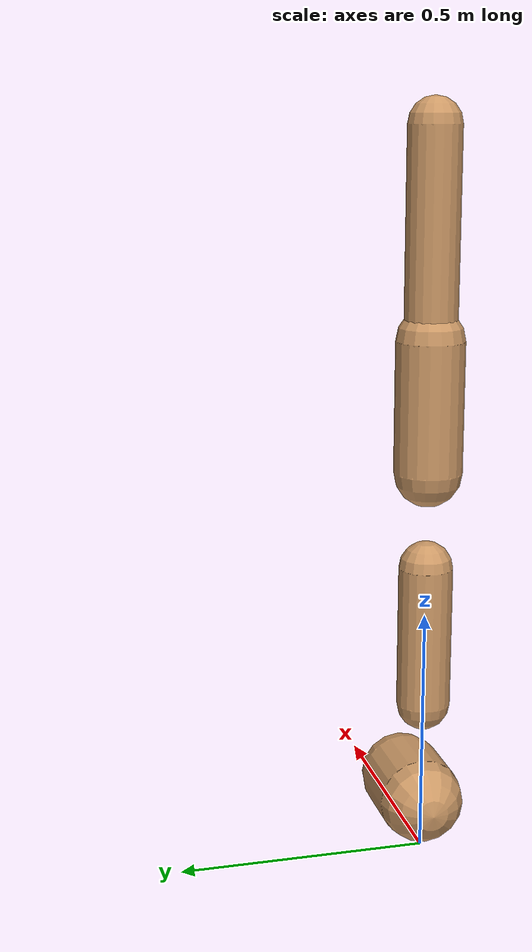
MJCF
<mujoco model="walker2d">
  <compiler angle="degree" coordinate="global" inertiafromgeom="true" />
  <default>
    <joint armature="0.01" damping=".1" limited="true" />
    <geom conaffinity="0" condim="3" contype="1" density="1000" friction="0.8 .1 .1" rgba="0.8 0.6 .4 1" />
  </default>
  <option integrator="RK4" timestep="0.002" />
  <worldbody>

    <body name="torso" pos="0 0 -0.4066444497867384">
      <joint armature="0" axis="1 0 0" damping="0" limited="false" name="ignorex" pos="0 0 0" stiffness="0" type="slide" />
      <joint armature="0" axis="0 0 1" damping="0" limited="false" name="ignorez" pos="0 0 0" ref="1.25" stiffness="0" type="slide" />
      <joint armature="0" axis="0 1 0" damping="0" limited="false" name="ignorey" pos="0 0 0" stiffness="0" type="hinge" />
      <geom fromto="0 0 1.45 0 0 1.05" name="torso_geom" size="0.05156245232204668" type="capsule" />
      <body name="thigh">
        <joint axis="0 -1 0" name="thigh_joint" pos="0 0 1.05" range="-150 0" type="hinge" />
        <geom fromto="0.0 0.0 1.05 0.0 0.0 0.7926210551621392" name="thigh_geom" size="0.06689453130237413" type="capsule" />
        <body name="leg" pos="0.0 0.0 0.19262105516213923">
          <joint axis="0 -1 0" name="leg_joint" pos="0 0 0.6" range="-150 0" type="hinge" />
          <geom fromto="0.0 0.0 0.6 0.0 0.0 0.31402339462459916" name="leg_geom" size="0.0535156250418993" type="capsule" />
          <body name="foot" pos="0.0 0.0 0.21402339462459916">
            <joint axis="0 -1 0" name="foot_joint" pos="0 0 0.1" range="-45 45" type="hinge" />
            <geom fromto="0.0 0.0 0.1 0.1284776367116777 0.0 0.1" name="foot_geom" size="0.08564476138890603" type="capsule" />
          </body>
        </body>
      </body>

      <body name="thigh_left">
        <joint axis="0 -1 0" name="thigh_left_joint" pos="0 0 1.05" range="-150 0" type="hinge" />
        <geom fromto="0.0 0.0 1.05 0.0 0.0 0.7926210551621392" name="thigh_left_geom" rgba=".7 .3 .6 1" size="0.06689453130237413" type="capsule" />
        <body name="leg_left" pos="0.0 0.0 0.19262105516213923">
          <joint axis="0 -1 0" name="leg_left_joint" pos="0 0 0.6" range="-150 0" type="hinge" />
          <geom fromto="0.0 0.0 0.6 0.0 0.0 0.31402339462459916" name="leg_left_geom" rgba=".7 .3 .6 1" size="0.0535156250418993" type="capsule" />
          <body name="foot_left" pos="0.0 0.0 0.21402339462459916">
            <joint axis="0 -1 0" name="foot_left_joint" pos="0 0 0.1" range="-45 45" type="hinge" />
            <geom fromto="0.0 0.0 0.1 0.1284776367116777 0.0 0.1" name="foot_left_geom" rgba=".7 .3 .6 1" size="0.08564476138890603" type="capsule" />
          </body>
        </body>
      </body>
    </body>
  </worldbody>
  <actuator>

    <motor ctrllimited="true" ctrlrange="-1.0 1.0" gear="100" joint="thigh_joint" />
    <motor ctrllimited="true" ctrlrange="-1.0 1.0" gear="100" joint="leg_joint" />
    <motor ctrllimited="true" ctrlrange="-1.0 1.0" gear="100" joint="foot_joint" />
    <motor ctrllimited="true" ctrlrange="-1.0 1.0" gear="100" joint="thigh_left_joint" />
    <motor ctrllimited="true" ctrlrange="-1.0 1.0" gear="100" joint="leg_left_joint" />
    <motor ctrllimited="true" ctrlrange="-1.0 1.0" gear="100" joint="foot_left_joint" />

  </actuator>
</mujoco>
